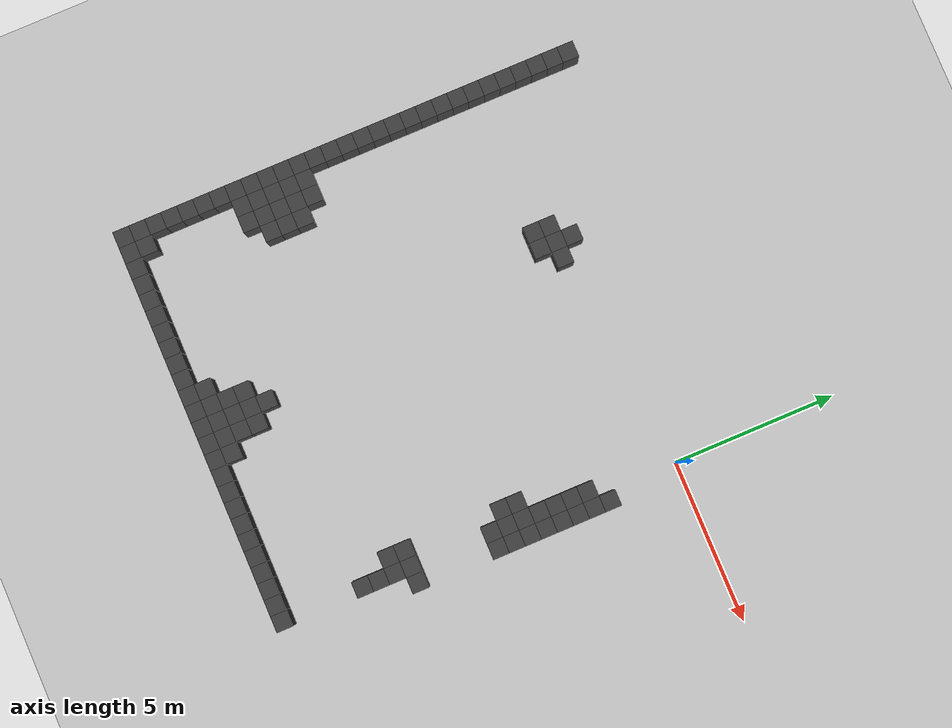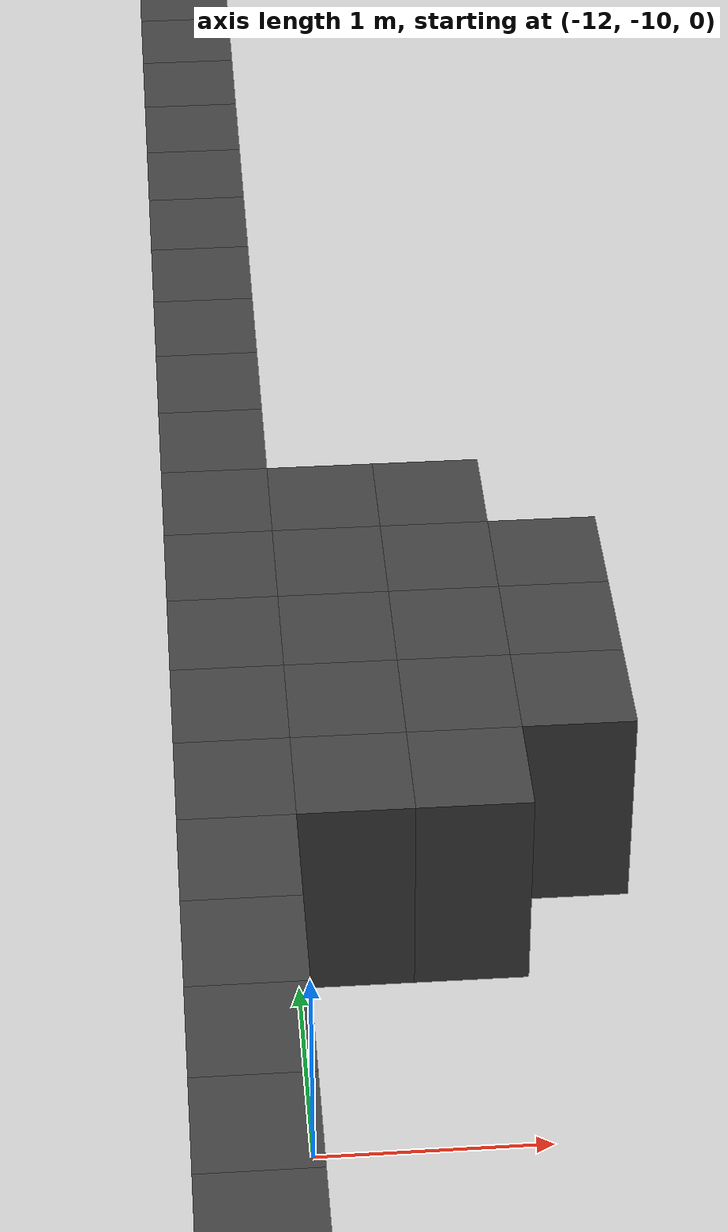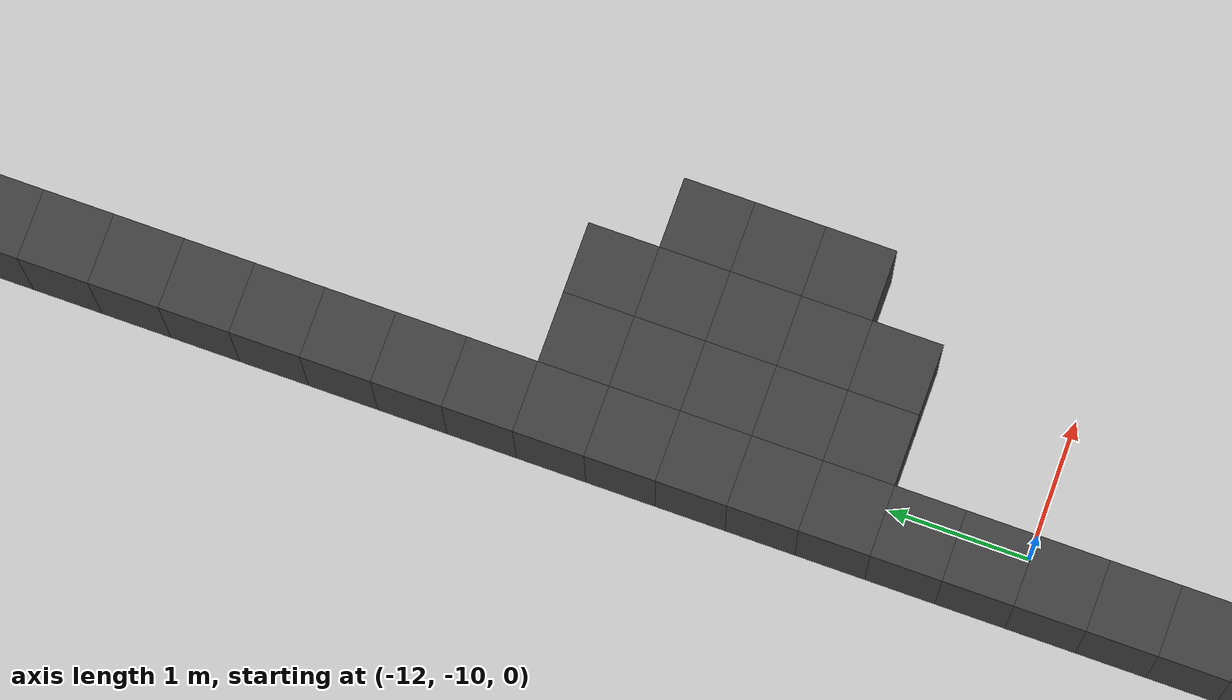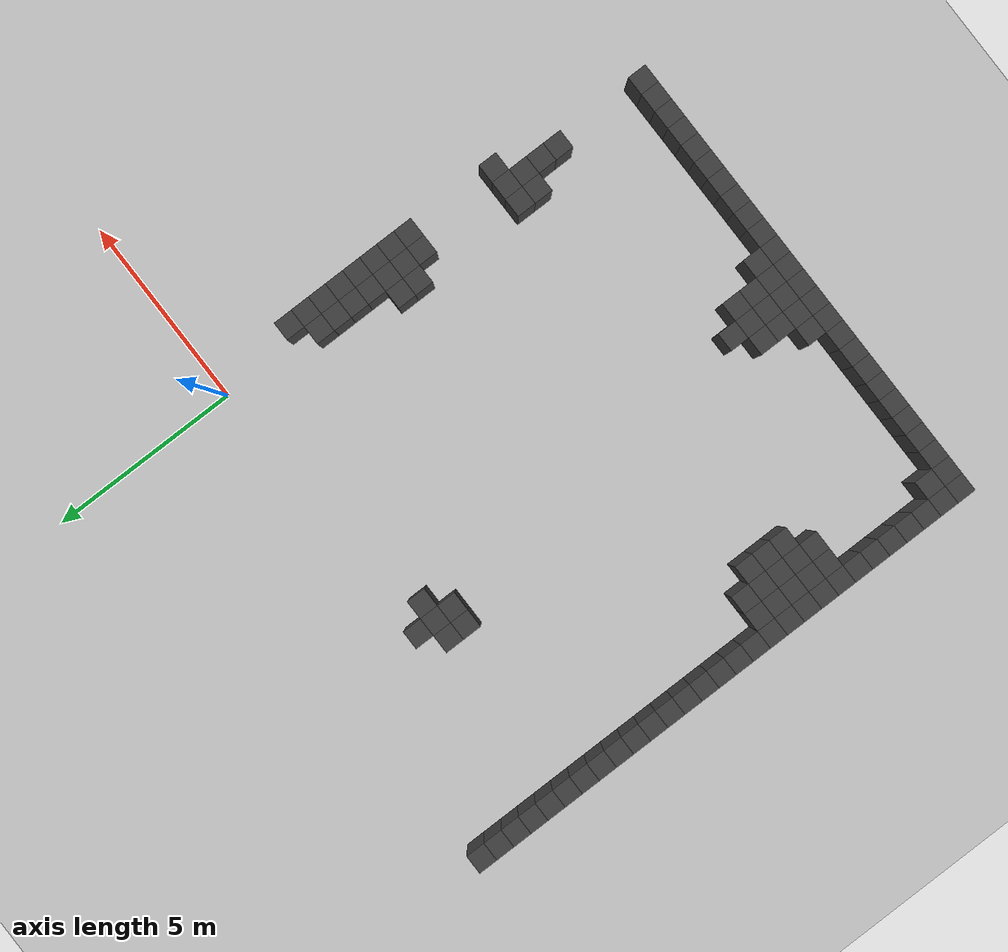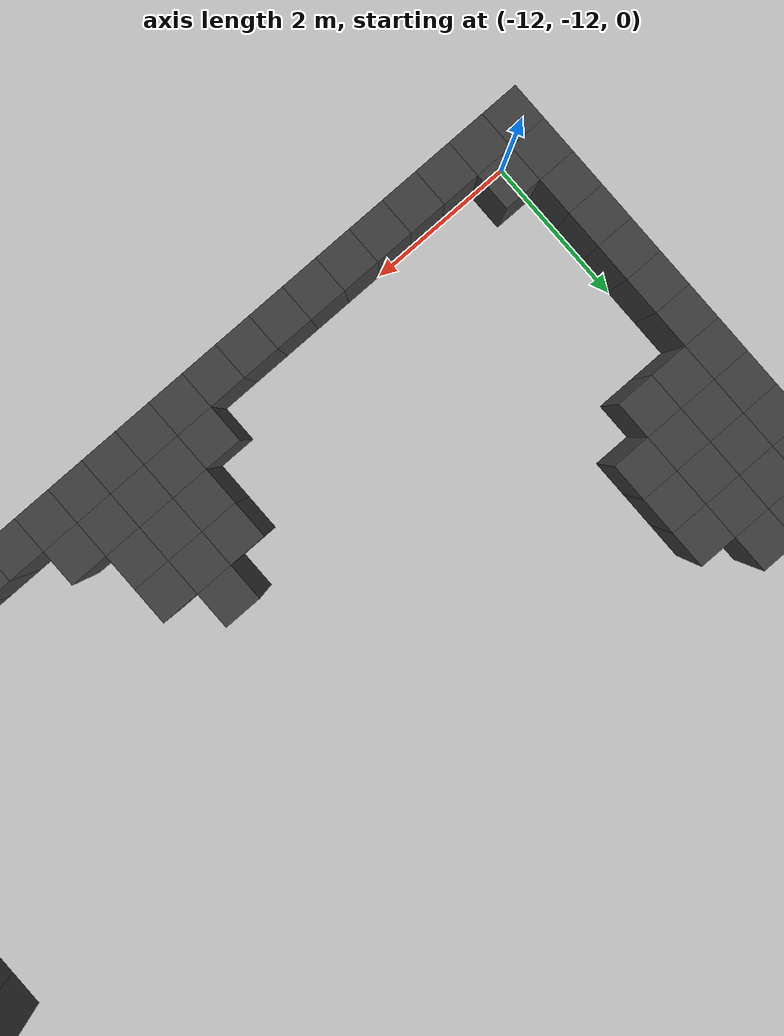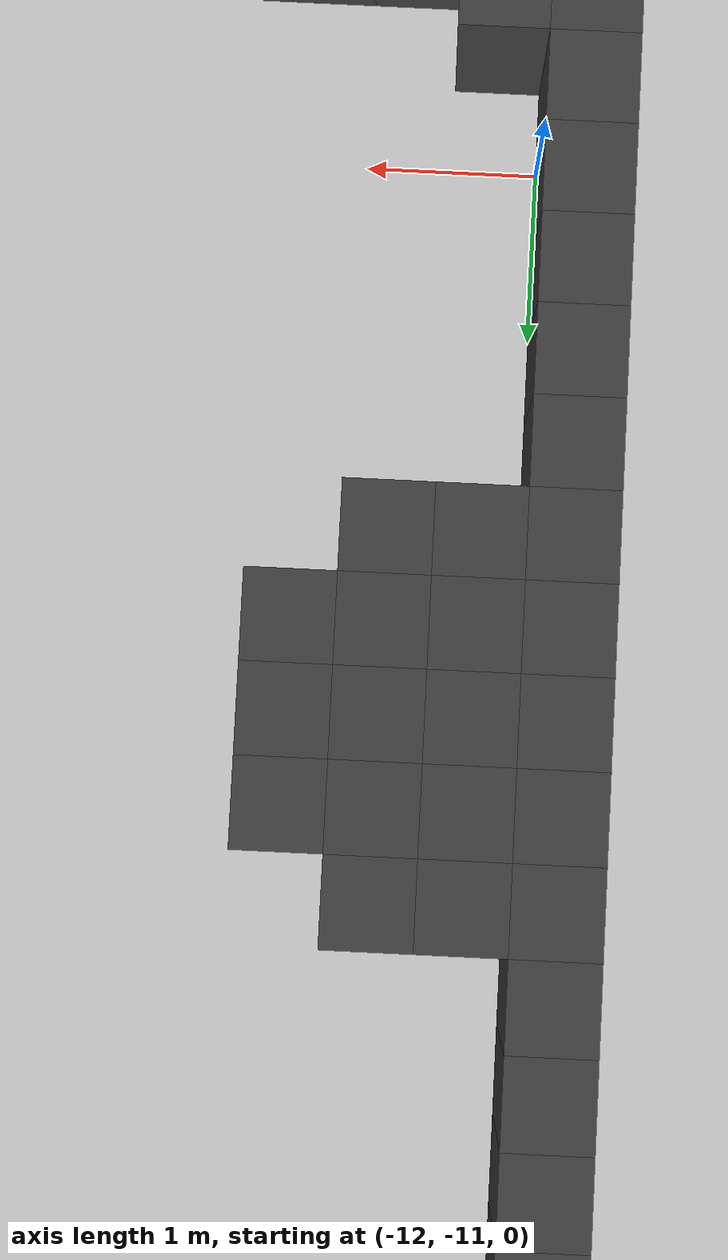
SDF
<sdf version="1.7">
 <world name="map_5937">
  <model name="ground_plane">
   <static>true</static>
   <link name="link">
    <collision name="collision">
     <geometry><plane><normal>0 0 1</normal><size>200 200</size></plane></geometry>
    </collision>
    <visual name="visual">
     <geometry><plane><normal>0 0 1</normal><size>200 200</size></plane></geometry>
     <material><ambient>0.8 0.8 0.8 1</ambient><diffuse>0.8 0.8 0.8 1</diffuse></material>
    </visual>
   </link>
  </model>
  <model name="maze_environment">
   <static>true</static>
   <link name="wall_195">
    <pose>-12.250 1.750 0.500 0 0 0</pose>
    <collision name="col"><geometry><box><size>0.5 0.5 1.0</size></box></geometry></collision>
    <visual name="vis">
     <geometry><box><size>0.5 0.5 1.0</size></box></geometry>
     <material><ambient>0.15 0.15 0.15 1</ambient><diffuse>0.25 0.25 0.25 1</diffuse></material>
    </visual>
   </link>
   <link name="wall_203">
    <pose>-12.250 1.250 0.500 0 0 0</pose>
    <collision name="col"><geometry><box><size>0.5 0.5 1.0</size></box></geometry></collision>
    <visual name="vis">
     <geometry><box><size>0.5 0.5 1.0</size></box></geometry>
     <material><ambient>0.15 0.15 0.15 1</ambient><diffuse>0.25 0.25 0.25 1</diffuse></material>
    </visual>
   </link>
   <link name="wall_211">
    <pose>-12.250 0.750 0.500 0 0 0</pose>
    <collision name="col"><geometry><box><size>0.5 0.5 1.0</size></box></geometry></collision>
    <visual name="vis">
     <geometry><box><size>0.5 0.5 1.0</size></box></geometry>
     <material><ambient>0.15 0.15 0.15 1</ambient><diffuse>0.25 0.25 0.25 1</diffuse></material>
    </visual>
   </link>
   <link name="wall_218">
    <pose>-12.250 0.250 0.500 0 0 0</pose>
    <collision name="col"><geometry><box><size>0.5 0.5 1.0</size></box></geometry></collision>
    <visual name="vis">
     <geometry><box><size>0.5 0.5 1.0</size></box></geometry>
     <material><ambient>0.15 0.15 0.15 1</ambient><diffuse>0.25 0.25 0.25 1</diffuse></material>
    </visual>
   </link>
   <link name="wall_224">
    <pose>-12.250 -0.250 0.500 0 0 0</pose>
    <collision name="col"><geometry><box><size>0.5 0.5 1.0</size></box></geometry></collision>
    <visual name="vis">
     <geometry><box><size>0.5 0.5 1.0</size></box></geometry>
     <material><ambient>0.15 0.15 0.15 1</ambient><diffuse>0.25 0.25 0.25 1</diffuse></material>
    </visual>
   </link>
   <link name="wall_225">
    <pose>-7.250 -0.250 0.500 0 0 0</pose>
    <collision name="col"><geometry><box><size>0.5 0.5 1.0</size></box></geometry></collision>
    <visual name="vis">
     <geometry><box><size>0.5 0.5 1.0</size></box></geometry>
     <material><ambient>0.15 0.15 0.15 1</ambient><diffuse>0.25 0.25 0.25 1</diffuse></material>
    </visual>
   </link>
   <link name="wall_229">
    <pose>-12.250 -0.750 0.500 0 0 0</pose>
    <collision name="col"><geometry><box><size>0.5 0.5 1.0</size></box></geometry></collision>
    <visual name="vis">
     <geometry><box><size>0.5 0.5 1.0</size></box></geometry>
     <material><ambient>0.15 0.15 0.15 1</ambient><diffuse>0.25 0.25 0.25 1</diffuse></material>
    </visual>
   </link>
   <link name="wall_230">
    <pose>-7.750 -0.750 0.500 0 0 0</pose>
    <collision name="col"><geometry><box><size>0.5 0.5 1.0</size></box></geometry></collision>
    <visual name="vis">
     <geometry><box><size>0.5 0.5 1.0</size></box></geometry>
     <material><ambient>0.15 0.15 0.15 1</ambient><diffuse>0.25 0.25 0.25 1</diffuse></material>
    </visual>
   </link>
   <link name="wall_231">
    <pose>-7.250 -0.750 0.500 0 0 0</pose>
    <collision name="col"><geometry><box><size>0.5 0.5 1.0</size></box></geometry></collision>
    <visual name="vis">
     <geometry><box><size>0.5 0.5 1.0</size></box></geometry>
     <material><ambient>0.15 0.15 0.15 1</ambient><diffuse>0.25 0.25 0.25 1</diffuse></material>
    </visual>
   </link>
   <link name="wall_232">
    <pose>-6.750 -0.750 0.500 0 0 0</pose>
    <collision name="col"><geometry><box><size>0.5 0.5 1.0</size></box></geometry></collision>
    <visual name="vis">
     <geometry><box><size>0.5 0.5 1.0</size></box></geometry>
     <material><ambient>0.15 0.15 0.15 1</ambient><diffuse>0.25 0.25 0.25 1</diffuse></material>
    </visual>
   </link>
   <link name="wall_234">
    <pose>-12.250 -1.250 0.500 0 0 0</pose>
    <collision name="col"><geometry><box><size>0.5 0.5 1.0</size></box></geometry></collision>
    <visual name="vis">
     <geometry><box><size>0.5 0.5 1.0</size></box></geometry>
     <material><ambient>0.15 0.15 0.15 1</ambient><diffuse>0.25 0.25 0.25 1</diffuse></material>
    </visual>
   </link>
   <link name="wall_235">
    <pose>-7.750 -1.250 0.500 0 0 0</pose>
    <collision name="col"><geometry><box><size>0.5 0.5 1.0</size></box></geometry></collision>
    <visual name="vis">
     <geometry><box><size>0.5 0.5 1.0</size></box></geometry>
     <material><ambient>0.15 0.15 0.15 1</ambient><diffuse>0.25 0.25 0.25 1</diffuse></material>
    </visual>
   </link>
   <link name="wall_236">
    <pose>-7.250 -1.250 0.500 0 0 0</pose>
    <collision name="col"><geometry><box><size>0.5 0.5 1.0</size></box></geometry></collision>
    <visual name="vis">
     <geometry><box><size>0.5 0.5 1.0</size></box></geometry>
     <material><ambient>0.15 0.15 0.15 1</ambient><diffuse>0.25 0.25 0.25 1</diffuse></material>
    </visual>
   </link>
   <link name="wall_240">
    <pose>-12.250 -1.750 0.500 0 0 0</pose>
    <collision name="col"><geometry><box><size>0.5 0.5 1.0</size></box></geometry></collision>
    <visual name="vis">
     <geometry><box><size>0.5 0.5 1.0</size></box></geometry>
     <material><ambient>0.15 0.15 0.15 1</ambient><diffuse>0.25 0.25 0.25 1</diffuse></material>
    </visual>
   </link>
   <link name="wall_245">
    <pose>-12.250 -2.250 0.500 0 0 0</pose>
    <collision name="col"><geometry><box><size>0.5 0.5 1.0</size></box></geometry></collision>
    <visual name="vis">
     <geometry><box><size>0.5 0.5 1.0</size></box></geometry>
     <material><ambient>0.15 0.15 0.15 1</ambient><diffuse>0.25 0.25 0.25 1</diffuse></material>
    </visual>
   </link>
   <link name="wall_246">
    <pose>0.250 -2.250 0.500 0 0 0</pose>
    <collision name="col"><geometry><box><size>0.5 0.5 1.0</size></box></geometry></collision>
    <visual name="vis">
     <geometry><box><size>0.5 0.5 1.0</size></box></geometry>
     <material><ambient>0.15 0.15 0.15 1</ambient><diffuse>0.25 0.25 0.25 1</diffuse></material>
    </visual>
   </link>
   <link name="wall_252">
    <pose>-12.250 -2.750 0.500 0 0 0</pose>
    <collision name="col"><geometry><box><size>0.5 0.5 1.0</size></box></geometry></collision>
    <visual name="vis">
     <geometry><box><size>0.5 0.5 1.0</size></box></geometry>
     <material><ambient>0.15 0.15 0.15 1</ambient><diffuse>0.25 0.25 0.25 1</diffuse></material>
    </visual>
   </link>
   <link name="wall_253">
    <pose>-0.250 -2.750 0.500 0 0 0</pose>
    <collision name="col"><geometry><box><size>0.5 0.5 1.0</size></box></geometry></collision>
    <visual name="vis">
     <geometry><box><size>0.5 0.5 1.0</size></box></geometry>
     <material><ambient>0.15 0.15 0.15 1</ambient><diffuse>0.25 0.25 0.25 1</diffuse></material>
    </visual>
   </link>
   <link name="wall_254">
    <pose>0.250 -2.750 0.500 0 0 0</pose>
    <collision name="col"><geometry><box><size>0.5 0.5 1.0</size></box></geometry></collision>
    <visual name="vis">
     <geometry><box><size>0.5 0.5 1.0</size></box></geometry>
     <material><ambient>0.15 0.15 0.15 1</ambient><diffuse>0.25 0.25 0.25 1</diffuse></material>
    </visual>
   </link>
   <link name="wall_261">
    <pose>-12.250 -3.250 0.500 0 0 0</pose>
    <collision name="col"><geometry><box><size>0.5 0.5 1.0</size></box></geometry></collision>
    <visual name="vis">
     <geometry><box><size>0.5 0.5 1.0</size></box></geometry>
     <material><ambient>0.15 0.15 0.15 1</ambient><diffuse>0.25 0.25 0.25 1</diffuse></material>
    </visual>
   </link>
   <link name="wall_262">
    <pose>-0.250 -3.250 0.500 0 0 0</pose>
    <collision name="col"><geometry><box><size>0.5 0.5 1.0</size></box></geometry></collision>
    <visual name="vis">
     <geometry><box><size>0.5 0.5 1.0</size></box></geometry>
     <material><ambient>0.15 0.15 0.15 1</ambient><diffuse>0.25 0.25 0.25 1</diffuse></material>
    </visual>
   </link>
   <link name="wall_263">
    <pose>0.250 -3.250 0.500 0 0 0</pose>
    <collision name="col"><geometry><box><size>0.5 0.5 1.0</size></box></geometry></collision>
    <visual name="vis">
     <geometry><box><size>0.5 0.5 1.0</size></box></geometry>
     <material><ambient>0.15 0.15 0.15 1</ambient><diffuse>0.25 0.25 0.25 1</diffuse></material>
    </visual>
   </link>
   <link name="wall_274">
    <pose>-12.250 -3.750 0.500 0 0 0</pose>
    <collision name="col"><geometry><box><size>0.5 0.5 1.0</size></box></geometry></collision>
    <visual name="vis">
     <geometry><box><size>0.5 0.5 1.0</size></box></geometry>
     <material><ambient>0.15 0.15 0.15 1</ambient><diffuse>0.25 0.25 0.25 1</diffuse></material>
    </visual>
   </link>
   <link name="wall_275">
    <pose>-0.250 -3.750 0.500 0 0 0</pose>
    <collision name="col"><geometry><box><size>0.5 0.5 1.0</size></box></geometry></collision>
    <visual name="vis">
     <geometry><box><size>0.5 0.5 1.0</size></box></geometry>
     <material><ambient>0.15 0.15 0.15 1</ambient><diffuse>0.25 0.25 0.25 1</diffuse></material>
    </visual>
   </link>
   <link name="wall_276">
    <pose>0.250 -3.750 0.500 0 0 0</pose>
    <collision name="col"><geometry><box><size>0.5 0.5 1.0</size></box></geometry></collision>
    <visual name="vis">
     <geometry><box><size>0.5 0.5 1.0</size></box></geometry>
     <material><ambient>0.15 0.15 0.15 1</ambient><diffuse>0.25 0.25 0.25 1</diffuse></material>
    </visual>
   </link>
   <link name="wall_287">
    <pose>-12.250 -4.250 0.500 0 0 0</pose>
    <collision name="col"><geometry><box><size>0.5 0.5 1.0</size></box></geometry></collision>
    <visual name="vis">
     <geometry><box><size>0.5 0.5 1.0</size></box></geometry>
     <material><ambient>0.15 0.15 0.15 1</ambient><diffuse>0.25 0.25 0.25 1</diffuse></material>
    </visual>
   </link>
   <link name="wall_288">
    <pose>-0.250 -4.250 0.500 0 0 0</pose>
    <collision name="col"><geometry><box><size>0.5 0.5 1.0</size></box></geometry></collision>
    <visual name="vis">
     <geometry><box><size>0.5 0.5 1.0</size></box></geometry>
     <material><ambient>0.15 0.15 0.15 1</ambient><diffuse>0.25 0.25 0.25 1</diffuse></material>
    </visual>
   </link>
   <link name="wall_289">
    <pose>0.250 -4.250 0.500 0 0 0</pose>
    <collision name="col"><geometry><box><size>0.5 0.5 1.0</size></box></geometry></collision>
    <visual name="vis">
     <geometry><box><size>0.5 0.5 1.0</size></box></geometry>
     <material><ambient>0.15 0.15 0.15 1</ambient><diffuse>0.25 0.25 0.25 1</diffuse></material>
    </visual>
   </link>
   <link name="wall_299">
    <pose>-12.250 -4.750 0.500 0 0 0</pose>
    <collision name="col"><geometry><box><size>0.5 0.5 1.0</size></box></geometry></collision>
    <visual name="vis">
     <geometry><box><size>0.5 0.5 1.0</size></box></geometry>
     <material><ambient>0.15 0.15 0.15 1</ambient><diffuse>0.25 0.25 0.25 1</diffuse></material>
    </visual>
   </link>
   <link name="wall_300">
    <pose>-0.750 -4.750 0.500 0 0 0</pose>
    <collision name="col"><geometry><box><size>0.5 0.5 1.0</size></box></geometry></collision>
    <visual name="vis">
     <geometry><box><size>0.5 0.5 1.0</size></box></geometry>
     <material><ambient>0.15 0.15 0.15 1</ambient><diffuse>0.25 0.25 0.25 1</diffuse></material>
    </visual>
   </link>
   <link name="wall_301">
    <pose>-0.250 -4.750 0.500 0 0 0</pose>
    <collision name="col"><geometry><box><size>0.5 0.5 1.0</size></box></geometry></collision>
    <visual name="vis">
     <geometry><box><size>0.5 0.5 1.0</size></box></geometry>
     <material><ambient>0.15 0.15 0.15 1</ambient><diffuse>0.25 0.25 0.25 1</diffuse></material>
    </visual>
   </link>
   <link name="wall_302">
    <pose>0.250 -4.750 0.500 0 0 0</pose>
    <collision name="col"><geometry><box><size>0.5 0.5 1.0</size></box></geometry></collision>
    <visual name="vis">
     <geometry><box><size>0.5 0.5 1.0</size></box></geometry>
     <material><ambient>0.15 0.15 0.15 1</ambient><diffuse>0.25 0.25 0.25 1</diffuse></material>
    </visual>
   </link>
   <link name="wall_310">
    <pose>-12.250 -5.250 0.500 0 0 0</pose>
    <collision name="col"><geometry><box><size>0.5 0.5 1.0</size></box></geometry></collision>
    <visual name="vis">
     <geometry><box><size>0.5 0.5 1.0</size></box></geometry>
     <material><ambient>0.15 0.15 0.15 1</ambient><diffuse>0.25 0.25 0.25 1</diffuse></material>
    </visual>
   </link>
   <link name="wall_311">
    <pose>-0.750 -5.250 0.500 0 0 0</pose>
    <collision name="col"><geometry><box><size>0.5 0.5 1.0</size></box></geometry></collision>
    <visual name="vis">
     <geometry><box><size>0.5 0.5 1.0</size></box></geometry>
     <material><ambient>0.15 0.15 0.15 1</ambient><diffuse>0.25 0.25 0.25 1</diffuse></material>
    </visual>
   </link>
   <link name="wall_312">
    <pose>-0.250 -5.250 0.500 0 0 0</pose>
    <collision name="col"><geometry><box><size>0.5 0.5 1.0</size></box></geometry></collision>
    <visual name="vis">
     <geometry><box><size>0.5 0.5 1.0</size></box></geometry>
     <material><ambient>0.15 0.15 0.15 1</ambient><diffuse>0.25 0.25 0.25 1</diffuse></material>
    </visual>
   </link>
   <link name="wall_313">
    <pose>0.250 -5.250 0.500 0 0 0</pose>
    <collision name="col"><geometry><box><size>0.5 0.5 1.0</size></box></geometry></collision>
    <visual name="vis">
     <geometry><box><size>0.5 0.5 1.0</size></box></geometry>
     <material><ambient>0.15 0.15 0.15 1</ambient><diffuse>0.25 0.25 0.25 1</diffuse></material>
    </visual>
   </link>
   <link name="wall_318">
    <pose>-12.250 -5.750 0.500 0 0 0</pose>
    <collision name="col"><geometry><box><size>0.5 0.5 1.0</size></box></geometry></collision>
    <visual name="vis">
     <geometry><box><size>0.5 0.5 1.0</size></box></geometry>
     <material><ambient>0.15 0.15 0.15 1</ambient><diffuse>0.25 0.25 0.25 1</diffuse></material>
    </visual>
   </link>
   <link name="wall_319">
    <pose>-0.250 -5.750 0.500 0 0 0</pose>
    <collision name="col"><geometry><box><size>0.5 0.5 1.0</size></box></geometry></collision>
    <visual name="vis">
     <geometry><box><size>0.5 0.5 1.0</size></box></geometry>
     <material><ambient>0.15 0.15 0.15 1</ambient><diffuse>0.25 0.25 0.25 1</diffuse></material>
    </visual>
   </link>
   <link name="wall_320">
    <pose>0.250 -5.750 0.500 0 0 0</pose>
    <collision name="col"><geometry><box><size>0.5 0.5 1.0</size></box></geometry></collision>
    <visual name="vis">
     <geometry><box><size>0.5 0.5 1.0</size></box></geometry>
     <material><ambient>0.15 0.15 0.15 1</ambient><diffuse>0.25 0.25 0.25 1</diffuse></material>
    </visual>
   </link>
   <link name="wall_325">
    <pose>-12.250 -6.250 0.500 0 0 0</pose>
    <collision name="col"><geometry><box><size>0.5 0.5 1.0</size></box></geometry></collision>
    <visual name="vis">
     <geometry><box><size>0.5 0.5 1.0</size></box></geometry>
     <material><ambient>0.15 0.15 0.15 1</ambient><diffuse>0.25 0.25 0.25 1</diffuse></material>
    </visual>
   </link>
   <link name="wall_335">
    <pose>-12.250 -6.750 0.500 0 0 0</pose>
    <collision name="col"><geometry><box><size>0.5 0.5 1.0</size></box></geometry></collision>
    <visual name="vis">
     <geometry><box><size>0.5 0.5 1.0</size></box></geometry>
     <material><ambient>0.15 0.15 0.15 1</ambient><diffuse>0.25 0.25 0.25 1</diffuse></material>
    </visual>
   </link>
   <link name="wall_336">
    <pose>-11.750 -6.750 0.500 0 0 0</pose>
    <collision name="col"><geometry><box><size>0.5 0.5 1.0</size></box></geometry></collision>
    <visual name="vis">
     <geometry><box><size>0.5 0.5 1.0</size></box></geometry>
     <material><ambient>0.15 0.15 0.15 1</ambient><diffuse>0.25 0.25 0.25 1</diffuse></material>
    </visual>
   </link>
   <link name="wall_337">
    <pose>-11.250 -6.750 0.500 0 0 0</pose>
    <collision name="col"><geometry><box><size>0.5 0.5 1.0</size></box></geometry></collision>
    <visual name="vis">
     <geometry><box><size>0.5 0.5 1.0</size></box></geometry>
     <material><ambient>0.15 0.15 0.15 1</ambient><diffuse>0.25 0.25 0.25 1</diffuse></material>
    </visual>
   </link>
   <link name="wall_349">
    <pose>-12.250 -7.250 0.500 0 0 0</pose>
    <collision name="col"><geometry><box><size>0.5 0.5 1.0</size></box></geometry></collision>
    <visual name="vis">
     <geometry><box><size>0.5 0.5 1.0</size></box></geometry>
     <material><ambient>0.15 0.15 0.15 1</ambient><diffuse>0.25 0.25 0.25 1</diffuse></material>
    </visual>
   </link>
   <link name="wall_350">
    <pose>-11.750 -7.250 0.500 0 0 0</pose>
    <collision name="col"><geometry><box><size>0.5 0.5 1.0</size></box></geometry></collision>
    <visual name="vis">
     <geometry><box><size>0.5 0.5 1.0</size></box></geometry>
     <material><ambient>0.15 0.15 0.15 1</ambient><diffuse>0.25 0.25 0.25 1</diffuse></material>
    </visual>
   </link>
   <link name="wall_351">
    <pose>-11.250 -7.250 0.500 0 0 0</pose>
    <collision name="col"><geometry><box><size>0.5 0.5 1.0</size></box></geometry></collision>
    <visual name="vis">
     <geometry><box><size>0.5 0.5 1.0</size></box></geometry>
     <material><ambient>0.15 0.15 0.15 1</ambient><diffuse>0.25 0.25 0.25 1</diffuse></material>
    </visual>
   </link>
   <link name="wall_352">
    <pose>-10.750 -7.250 0.500 0 0 0</pose>
    <collision name="col"><geometry><box><size>0.5 0.5 1.0</size></box></geometry></collision>
    <visual name="vis">
     <geometry><box><size>0.5 0.5 1.0</size></box></geometry>
     <material><ambient>0.15 0.15 0.15 1</ambient><diffuse>0.25 0.25 0.25 1</diffuse></material>
    </visual>
   </link>
   <link name="wall_364">
    <pose>-12.250 -7.750 0.500 0 0 0</pose>
    <collision name="col"><geometry><box><size>0.5 0.5 1.0</size></box></geometry></collision>
    <visual name="vis">
     <geometry><box><size>0.5 0.5 1.0</size></box></geometry>
     <material><ambient>0.15 0.15 0.15 1</ambient><diffuse>0.25 0.25 0.25 1</diffuse></material>
    </visual>
   </link>
   <link name="wall_365">
    <pose>-11.750 -7.750 0.500 0 0 0</pose>
    <collision name="col"><geometry><box><size>0.5 0.5 1.0</size></box></geometry></collision>
    <visual name="vis">
     <geometry><box><size>0.5 0.5 1.0</size></box></geometry>
     <material><ambient>0.15 0.15 0.15 1</ambient><diffuse>0.25 0.25 0.25 1</diffuse></material>
    </visual>
   </link>
   <link name="wall_366">
    <pose>-11.250 -7.750 0.500 0 0 0</pose>
    <collision name="col"><geometry><box><size>0.5 0.5 1.0</size></box></geometry></collision>
    <visual name="vis">
     <geometry><box><size>0.5 0.5 1.0</size></box></geometry>
     <material><ambient>0.15 0.15 0.15 1</ambient><diffuse>0.25 0.25 0.25 1</diffuse></material>
    </visual>
   </link>
   <link name="wall_367">
    <pose>-10.750 -7.750 0.500 0 0 0</pose>
    <collision name="col"><geometry><box><size>0.5 0.5 1.0</size></box></geometry></collision>
    <visual name="vis">
     <geometry><box><size>0.5 0.5 1.0</size></box></geometry>
     <material><ambient>0.15 0.15 0.15 1</ambient><diffuse>0.25 0.25 0.25 1</diffuse></material>
    </visual>
   </link>
   <link name="wall_381">
    <pose>-12.250 -8.250 0.500 0 0 0</pose>
    <collision name="col"><geometry><box><size>0.5 0.5 1.0</size></box></geometry></collision>
    <visual name="vis">
     <geometry><box><size>0.5 0.5 1.0</size></box></geometry>
     <material><ambient>0.15 0.15 0.15 1</ambient><diffuse>0.25 0.25 0.25 1</diffuse></material>
    </visual>
   </link>
   <link name="wall_382">
    <pose>-11.750 -8.250 0.500 0 0 0</pose>
    <collision name="col"><geometry><box><size>0.5 0.5 1.0</size></box></geometry></collision>
    <visual name="vis">
     <geometry><box><size>0.5 0.5 1.0</size></box></geometry>
     <material><ambient>0.15 0.15 0.15 1</ambient><diffuse>0.25 0.25 0.25 1</diffuse></material>
    </visual>
   </link>
   <link name="wall_383">
    <pose>-11.250 -8.250 0.500 0 0 0</pose>
    <collision name="col"><geometry><box><size>0.5 0.5 1.0</size></box></geometry></collision>
    <visual name="vis">
     <geometry><box><size>0.5 0.5 1.0</size></box></geometry>
     <material><ambient>0.15 0.15 0.15 1</ambient><diffuse>0.25 0.25 0.25 1</diffuse></material>
    </visual>
   </link>
   <link name="wall_384">
    <pose>-10.750 -8.250 0.500 0 0 0</pose>
    <collision name="col"><geometry><box><size>0.5 0.5 1.0</size></box></geometry></collision>
    <visual name="vis">
     <geometry><box><size>0.5 0.5 1.0</size></box></geometry>
     <material><ambient>0.15 0.15 0.15 1</ambient><diffuse>0.25 0.25 0.25 1</diffuse></material>
    </visual>
   </link>
   <link name="wall_385">
    <pose>-0.750 -8.250 0.500 0 0 0</pose>
    <collision name="col"><geometry><box><size>0.5 0.5 1.0</size></box></geometry></collision>
    <visual name="vis">
     <geometry><box><size>0.5 0.5 1.0</size></box></geometry>
     <material><ambient>0.15 0.15 0.15 1</ambient><diffuse>0.25 0.25 0.25 1</diffuse></material>
    </visual>
   </link>
   <link name="wall_386">
    <pose>-0.250 -8.250 0.500 0 0 0</pose>
    <collision name="col"><geometry><box><size>0.5 0.5 1.0</size></box></geometry></collision>
    <visual name="vis">
     <geometry><box><size>0.5 0.5 1.0</size></box></geometry>
     <material><ambient>0.15 0.15 0.15 1</ambient><diffuse>0.25 0.25 0.25 1</diffuse></material>
    </visual>
   </link>
   <link name="wall_387">
    <pose>0.250 -8.250 0.500 0 0 0</pose>
    <collision name="col"><geometry><box><size>0.5 0.5 1.0</size></box></geometry></collision>
    <visual name="vis">
     <geometry><box><size>0.5 0.5 1.0</size></box></geometry>
     <material><ambient>0.15 0.15 0.15 1</ambient><diffuse>0.25 0.25 0.25 1</diffuse></material>
    </visual>
   </link>
   <link name="wall_398">
    <pose>-12.250 -8.750 0.500 0 0 0</pose>
    <collision name="col"><geometry><box><size>0.5 0.5 1.0</size></box></geometry></collision>
    <visual name="vis">
     <geometry><box><size>0.5 0.5 1.0</size></box></geometry>
     <material><ambient>0.15 0.15 0.15 1</ambient><diffuse>0.25 0.25 0.25 1</diffuse></material>
    </visual>
   </link>
   <link name="wall_399">
    <pose>-11.750 -8.750 0.500 0 0 0</pose>
    <collision name="col"><geometry><box><size>0.5 0.5 1.0</size></box></geometry></collision>
    <visual name="vis">
     <geometry><box><size>0.5 0.5 1.0</size></box></geometry>
     <material><ambient>0.15 0.15 0.15 1</ambient><diffuse>0.25 0.25 0.25 1</diffuse></material>
    </visual>
   </link>
   <link name="wall_400">
    <pose>-11.250 -8.750 0.500 0 0 0</pose>
    <collision name="col"><geometry><box><size>0.5 0.5 1.0</size></box></geometry></collision>
    <visual name="vis">
     <geometry><box><size>0.5 0.5 1.0</size></box></geometry>
     <material><ambient>0.15 0.15 0.15 1</ambient><diffuse>0.25 0.25 0.25 1</diffuse></material>
    </visual>
   </link>
   <link name="wall_401">
    <pose>-0.750 -8.750 0.500 0 0 0</pose>
    <collision name="col"><geometry><box><size>0.5 0.5 1.0</size></box></geometry></collision>
    <visual name="vis">
     <geometry><box><size>0.5 0.5 1.0</size></box></geometry>
     <material><ambient>0.15 0.15 0.15 1</ambient><diffuse>0.25 0.25 0.25 1</diffuse></material>
    </visual>
   </link>
   <link name="wall_402">
    <pose>-0.250 -8.750 0.500 0 0 0</pose>
    <collision name="col"><geometry><box><size>0.5 0.5 1.0</size></box></geometry></collision>
    <visual name="vis">
     <geometry><box><size>0.5 0.5 1.0</size></box></geometry>
     <material><ambient>0.15 0.15 0.15 1</ambient><diffuse>0.25 0.25 0.25 1</diffuse></material>
    </visual>
   </link>
   <link name="wall_418">
    <pose>-12.250 -9.250 0.500 0 0 0</pose>
    <collision name="col"><geometry><box><size>0.5 0.5 1.0</size></box></geometry></collision>
    <visual name="vis">
     <geometry><box><size>0.5 0.5 1.0</size></box></geometry>
     <material><ambient>0.15 0.15 0.15 1</ambient><diffuse>0.25 0.25 0.25 1</diffuse></material>
    </visual>
   </link>
   <link name="wall_419">
    <pose>-0.250 -9.250 0.500 0 0 0</pose>
    <collision name="col"><geometry><box><size>0.5 0.5 1.0</size></box></geometry></collision>
    <visual name="vis">
     <geometry><box><size>0.5 0.5 1.0</size></box></geometry>
     <material><ambient>0.15 0.15 0.15 1</ambient><diffuse>0.25 0.25 0.25 1</diffuse></material>
    </visual>
   </link>
   <link name="wall_438">
    <pose>-12.250 -9.750 0.500 0 0 0</pose>
    <collision name="col"><geometry><box><size>0.5 0.5 1.0</size></box></geometry></collision>
    <visual name="vis">
     <geometry><box><size>0.5 0.5 1.0</size></box></geometry>
     <material><ambient>0.15 0.15 0.15 1</ambient><diffuse>0.25 0.25 0.25 1</diffuse></material>
    </visual>
   </link>
   <link name="wall_439">
    <pose>-0.250 -9.750 0.500 0 0 0</pose>
    <collision name="col"><geometry><box><size>0.5 0.5 1.0</size></box></geometry></collision>
    <visual name="vis">
     <geometry><box><size>0.5 0.5 1.0</size></box></geometry>
     <material><ambient>0.15 0.15 0.15 1</ambient><diffuse>0.25 0.25 0.25 1</diffuse></material>
    </visual>
   </link>
   <link name="wall_455">
    <pose>-12.250 -10.250 0.500 0 0 0</pose>
    <collision name="col"><geometry><box><size>0.5 0.5 1.0</size></box></geometry></collision>
    <visual name="vis">
     <geometry><box><size>0.5 0.5 1.0</size></box></geometry>
     <material><ambient>0.15 0.15 0.15 1</ambient><diffuse>0.25 0.25 0.25 1</diffuse></material>
    </visual>
   </link>
   <link name="wall_456">
    <pose>-6.250 -10.250 0.500 0 0 0</pose>
    <collision name="col"><geometry><box><size>0.5 0.5 1.0</size></box></geometry></collision>
    <visual name="vis">
     <geometry><box><size>0.5 0.5 1.0</size></box></geometry>
     <material><ambient>0.15 0.15 0.15 1</ambient><diffuse>0.25 0.25 0.25 1</diffuse></material>
    </visual>
   </link>
   <link name="wall_466">
    <pose>-12.250 -10.750 0.500 0 0 0</pose>
    <collision name="col"><geometry><box><size>0.5 0.5 1.0</size></box></geometry></collision>
    <visual name="vis">
     <geometry><box><size>0.5 0.5 1.0</size></box></geometry>
     <material><ambient>0.15 0.15 0.15 1</ambient><diffuse>0.25 0.25 0.25 1</diffuse></material>
    </visual>
   </link>
   <link name="wall_467">
    <pose>-6.750 -10.750 0.500 0 0 0</pose>
    <collision name="col"><geometry><box><size>0.5 0.5 1.0</size></box></geometry></collision>
    <visual name="vis">
     <geometry><box><size>0.5 0.5 1.0</size></box></geometry>
     <material><ambient>0.15 0.15 0.15 1</ambient><diffuse>0.25 0.25 0.25 1</diffuse></material>
    </visual>
   </link>
   <link name="wall_468">
    <pose>-6.250 -10.750 0.500 0 0 0</pose>
    <collision name="col"><geometry><box><size>0.5 0.5 1.0</size></box></geometry></collision>
    <visual name="vis">
     <geometry><box><size>0.5 0.5 1.0</size></box></geometry>
     <material><ambient>0.15 0.15 0.15 1</ambient><diffuse>0.25 0.25 0.25 1</diffuse></material>
    </visual>
   </link>
   <link name="wall_469">
    <pose>-5.750 -10.750 0.500 0 0 0</pose>
    <collision name="col"><geometry><box><size>0.5 0.5 1.0</size></box></geometry></collision>
    <visual name="vis">
     <geometry><box><size>0.5 0.5 1.0</size></box></geometry>
     <material><ambient>0.15 0.15 0.15 1</ambient><diffuse>0.25 0.25 0.25 1</diffuse></material>
    </visual>
   </link>
   <link name="wall_475">
    <pose>-12.250 -11.250 0.500 0 0 0</pose>
    <collision name="col"><geometry><box><size>0.5 0.5 1.0</size></box></geometry></collision>
    <visual name="vis">
     <geometry><box><size>0.5 0.5 1.0</size></box></geometry>
     <material><ambient>0.15 0.15 0.15 1</ambient><diffuse>0.25 0.25 0.25 1</diffuse></material>
    </visual>
   </link>
   <link name="wall_476">
    <pose>-6.750 -11.250 0.500 0 0 0</pose>
    <collision name="col"><geometry><box><size>0.5 0.5 1.0</size></box></geometry></collision>
    <visual name="vis">
     <geometry><box><size>0.5 0.5 1.0</size></box></geometry>
     <material><ambient>0.15 0.15 0.15 1</ambient><diffuse>0.25 0.25 0.25 1</diffuse></material>
    </visual>
   </link>
   <link name="wall_477">
    <pose>-6.250 -11.250 0.500 0 0 0</pose>
    <collision name="col"><geometry><box><size>0.5 0.5 1.0</size></box></geometry></collision>
    <visual name="vis">
     <geometry><box><size>0.5 0.5 1.0</size></box></geometry>
     <material><ambient>0.15 0.15 0.15 1</ambient><diffuse>0.25 0.25 0.25 1</diffuse></material>
    </visual>
   </link>
   <link name="wall_478">
    <pose>-5.750 -11.250 0.500 0 0 0</pose>
    <collision name="col"><geometry><box><size>0.5 0.5 1.0</size></box></geometry></collision>
    <visual name="vis">
     <geometry><box><size>0.5 0.5 1.0</size></box></geometry>
     <material><ambient>0.15 0.15 0.15 1</ambient><diffuse>0.25 0.25 0.25 1</diffuse></material>
    </visual>
   </link>
   <link name="wall_481">
    <pose>-12.250 -11.750 0.500 0 0 0</pose>
    <collision name="col"><geometry><box><size>0.5 0.5 1.0</size></box></geometry></collision>
    <visual name="vis">
     <geometry><box><size>0.5 0.5 1.0</size></box></geometry>
     <material><ambient>0.15 0.15 0.15 1</ambient><diffuse>0.25 0.25 0.25 1</diffuse></material>
    </visual>
   </link>
   <link name="wall_482">
    <pose>-11.750 -11.750 0.500 0 0 0</pose>
    <collision name="col"><geometry><box><size>0.5 0.5 1.0</size></box></geometry></collision>
    <visual name="vis">
     <geometry><box><size>0.5 0.5 1.0</size></box></geometry>
     <material><ambient>0.15 0.15 0.15 1</ambient><diffuse>0.25 0.25 0.25 1</diffuse></material>
    </visual>
   </link>
   <link name="wall_483">
    <pose>-7.250 -11.750 0.500 0 0 0</pose>
    <collision name="col"><geometry><box><size>0.5 0.5 1.0</size></box></geometry></collision>
    <visual name="vis">
     <geometry><box><size>0.5 0.5 1.0</size></box></geometry>
     <material><ambient>0.15 0.15 0.15 1</ambient><diffuse>0.25 0.25 0.25 1</diffuse></material>
    </visual>
   </link>
   <link name="wall_484">
    <pose>-6.750 -11.750 0.500 0 0 0</pose>
    <collision name="col"><geometry><box><size>0.5 0.5 1.0</size></box></geometry></collision>
    <visual name="vis">
     <geometry><box><size>0.5 0.5 1.0</size></box></geometry>
     <material><ambient>0.15 0.15 0.15 1</ambient><diffuse>0.25 0.25 0.25 1</diffuse></material>
    </visual>
   </link>
   <link name="wall_485">
    <pose>-6.250 -11.750 0.500 0 0 0</pose>
    <collision name="col"><geometry><box><size>0.5 0.5 1.0</size></box></geometry></collision>
    <visual name="vis">
     <geometry><box><size>0.5 0.5 1.0</size></box></geometry>
     <material><ambient>0.15 0.15 0.15 1</ambient><diffuse>0.25 0.25 0.25 1</diffuse></material>
    </visual>
   </link>
   <link name="wall_486">
    <pose>-5.750 -11.750 0.500 0 0 0</pose>
    <collision name="col"><geometry><box><size>0.5 0.5 1.0</size></box></geometry></collision>
    <visual name="vis">
     <geometry><box><size>0.5 0.5 1.0</size></box></geometry>
     <material><ambient>0.15 0.15 0.15 1</ambient><diffuse>0.25 0.25 0.25 1</diffuse></material>
    </visual>
   </link>
   <link name="wall_487">
    <pose>-5.250 -11.750 0.500 0 0 0</pose>
    <collision name="col"><geometry><box><size>0.5 0.5 1.0</size></box></geometry></collision>
    <visual name="vis">
     <geometry><box><size>0.5 0.5 1.0</size></box></geometry>
     <material><ambient>0.15 0.15 0.15 1</ambient><diffuse>0.25 0.25 0.25 1</diffuse></material>
    </visual>
   </link>
   <link name="wall_493">
    <pose>-12.250 -12.250 0.500 0 0 0</pose>
    <collision name="col"><geometry><box><size>0.5 0.5 1.0</size></box></geometry></collision>
    <visual name="vis">
     <geometry><box><size>0.5 0.5 1.0</size></box></geometry>
     <material><ambient>0.15 0.15 0.15 1</ambient><diffuse>0.25 0.25 0.25 1</diffuse></material>
    </visual>
   </link>
   <link name="wall_494">
    <pose>-11.750 -12.250 0.500 0 0 0</pose>
    <collision name="col"><geometry><box><size>0.5 0.5 1.0</size></box></geometry></collision>
    <visual name="vis">
     <geometry><box><size>0.5 0.5 1.0</size></box></geometry>
     <material><ambient>0.15 0.15 0.15 1</ambient><diffuse>0.25 0.25 0.25 1</diffuse></material>
    </visual>
   </link>
   <link name="wall_495">
    <pose>-11.250 -12.250 0.500 0 0 0</pose>
    <collision name="col"><geometry><box><size>0.5 0.5 1.0</size></box></geometry></collision>
    <visual name="vis">
     <geometry><box><size>0.5 0.5 1.0</size></box></geometry>
     <material><ambient>0.15 0.15 0.15 1</ambient><diffuse>0.25 0.25 0.25 1</diffuse></material>
    </visual>
   </link>
   <link name="wall_496">
    <pose>-10.750 -12.250 0.500 0 0 0</pose>
    <collision name="col"><geometry><box><size>0.5 0.5 1.0</size></box></geometry></collision>
    <visual name="vis">
     <geometry><box><size>0.5 0.5 1.0</size></box></geometry>
     <material><ambient>0.15 0.15 0.15 1</ambient><diffuse>0.25 0.25 0.25 1</diffuse></material>
    </visual>
   </link>
   <link name="wall_497">
    <pose>-10.250 -12.250 0.500 0 0 0</pose>
    <collision name="col"><geometry><box><size>0.5 0.5 1.0</size></box></geometry></collision>
    <visual name="vis">
     <geometry><box><size>0.5 0.5 1.0</size></box></geometry>
     <material><ambient>0.15 0.15 0.15 1</ambient><diffuse>0.25 0.25 0.25 1</diffuse></material>
    </visual>
   </link>
   <link name="wall_498">
    <pose>-9.750 -12.250 0.500 0 0 0</pose>
    <collision name="col"><geometry><box><size>0.5 0.5 1.0</size></box></geometry></collision>
    <visual name="vis">
     <geometry><box><size>0.5 0.5 1.0</size></box></geometry>
     <material><ambient>0.15 0.15 0.15 1</ambient><diffuse>0.25 0.25 0.25 1</diffuse></material>
    </visual>
   </link>
   <link name="wall_499">
    <pose>-9.250 -12.250 0.500 0 0 0</pose>
    <collision name="col"><geometry><box><size>0.5 0.5 1.0</size></box></geometry></collision>
    <visual name="vis">
     <geometry><box><size>0.5 0.5 1.0</size></box></geometry>
     <material><ambient>0.15 0.15 0.15 1</ambient><diffuse>0.25 0.25 0.25 1</diffuse></material>
    </visual>
   </link>
   <link name="wall_500">
    <pose>-8.750 -12.250 0.500 0 0 0</pose>
    <collision name="col"><geometry><box><size>0.5 0.5 1.0</size></box></geometry></collision>
    <visual name="vis">
     <geometry><box><size>0.5 0.5 1.0</size></box></geometry>
     <material><ambient>0.15 0.15 0.15 1</ambient><diffuse>0.25 0.25 0.25 1</diffuse></material>
    </visual>
   </link>
   <link name="wall_501">
    <pose>-8.250 -12.250 0.500 0 0 0</pose>
    <collision name="col"><geometry><box><size>0.5 0.5 1.0</size></box></geometry></collision>
    <visual name="vis">
     <geometry><box><size>0.5 0.5 1.0</size></box></geometry>
     <material><ambient>0.15 0.15 0.15 1</ambient><diffuse>0.25 0.25 0.25 1</diffuse></material>
    </visual>
   </link>
   <link name="wall_502">
    <pose>-7.750 -12.250 0.500 0 0 0</pose>
    <collision name="col"><geometry><box><size>0.5 0.5 1.0</size></box></geometry></collision>
    <visual name="vis">
     <geometry><box><size>0.5 0.5 1.0</size></box></geometry>
     <material><ambient>0.15 0.15 0.15 1</ambient><diffuse>0.25 0.25 0.25 1</diffuse></material>
    </visual>
   </link>
   <link name="wall_503">
    <pose>-7.250 -12.250 0.500 0 0 0</pose>
    <collision name="col"><geometry><box><size>0.5 0.5 1.0</size></box></geometry></collision>
    <visual name="vis">
     <geometry><box><size>0.5 0.5 1.0</size></box></geometry>
     <material><ambient>0.15 0.15 0.15 1</ambient><diffuse>0.25 0.25 0.25 1</diffuse></material>
    </visual>
   </link>
   <link name="wall_504">
    <pose>-6.750 -12.250 0.500 0 0 0</pose>
    <collision name="col"><geometry><box><size>0.5 0.5 1.0</size></box></geometry></collision>
    <visual name="vis">
     <geometry><box><size>0.5 0.5 1.0</size></box></geometry>
     <material><ambient>0.15 0.15 0.15 1</ambient><diffuse>0.25 0.25 0.25 1</diffuse></material>
    </visual>
   </link>
   <link name="wall_505">
    <pose>-6.250 -12.250 0.500 0 0 0</pose>
    <collision name="col"><geometry><box><size>0.5 0.5 1.0</size></box></geometry></collision>
    <visual name="vis">
     <geometry><box><size>0.5 0.5 1.0</size></box></geometry>
     <material><ambient>0.15 0.15 0.15 1</ambient><diffuse>0.25 0.25 0.25 1</diffuse></material>
    </visual>
   </link>
   <link name="wall_506">
    <pose>-5.750 -12.250 0.500 0 0 0</pose>
    <collision name="col"><geometry><box><size>0.5 0.5 1.0</size></box></geometry></collision>
    <visual name="vis">
     <geometry><box><size>0.5 0.5 1.0</size></box></geometry>
     <material><ambient>0.15 0.15 0.15 1</ambient><diffuse>0.25 0.25 0.25 1</diffuse></material>
    </visual>
   </link>
   <link name="wall_507">
    <pose>-5.250 -12.250 0.500 0 0 0</pose>
    <collision name="col"><geometry><box><size>0.5 0.5 1.0</size></box></geometry></collision>
    <visual name="vis">
     <geometry><box><size>0.5 0.5 1.0</size></box></geometry>
     <material><ambient>0.15 0.15 0.15 1</ambient><diffuse>0.25 0.25 0.25 1</diffuse></material>
    </visual>
   </link>
   <link name="wall_508">
    <pose>-4.750 -12.250 0.500 0 0 0</pose>
    <collision name="col"><geometry><box><size>0.5 0.5 1.0</size></box></geometry></collision>
    <visual name="vis">
     <geometry><box><size>0.5 0.5 1.0</size></box></geometry>
     <material><ambient>0.15 0.15 0.15 1</ambient><diffuse>0.25 0.25 0.25 1</diffuse></material>
    </visual>
   </link>
   <link name="wall_509">
    <pose>-4.250 -12.250 0.500 0 0 0</pose>
    <collision name="col"><geometry><box><size>0.5 0.5 1.0</size></box></geometry></collision>
    <visual name="vis">
     <geometry><box><size>0.5 0.5 1.0</size></box></geometry>
     <material><ambient>0.15 0.15 0.15 1</ambient><diffuse>0.25 0.25 0.25 1</diffuse></material>
    </visual>
   </link>
   <link name="wall_510">
    <pose>-3.750 -12.250 0.500 0 0 0</pose>
    <collision name="col"><geometry><box><size>0.5 0.5 1.0</size></box></geometry></collision>
    <visual name="vis">
     <geometry><box><size>0.5 0.5 1.0</size></box></geometry>
     <material><ambient>0.15 0.15 0.15 1</ambient><diffuse>0.25 0.25 0.25 1</diffuse></material>
    </visual>
   </link>
   <link name="wall_511">
    <pose>-3.250 -12.250 0.500 0 0 0</pose>
    <collision name="col"><geometry><box><size>0.5 0.5 1.0</size></box></geometry></collision>
    <visual name="vis">
     <geometry><box><size>0.5 0.5 1.0</size></box></geometry>
     <material><ambient>0.15 0.15 0.15 1</ambient><diffuse>0.25 0.25 0.25 1</diffuse></material>
    </visual>
   </link>
   <link name="wall_512">
    <pose>-2.750 -12.250 0.500 0 0 0</pose>
    <collision name="col"><geometry><box><size>0.5 0.5 1.0</size></box></geometry></collision>
    <visual name="vis">
     <geometry><box><size>0.5 0.5 1.0</size></box></geometry>
     <material><ambient>0.15 0.15 0.15 1</ambient><diffuse>0.25 0.25 0.25 1</diffuse></material>
    </visual>
   </link>
   <link name="wall_513">
    <pose>-2.250 -12.250 0.500 0 0 0</pose>
    <collision name="col"><geometry><box><size>0.5 0.5 1.0</size></box></geometry></collision>
    <visual name="vis">
     <geometry><box><size>0.5 0.5 1.0</size></box></geometry>
     <material><ambient>0.15 0.15 0.15 1</ambient><diffuse>0.25 0.25 0.25 1</diffuse></material>
    </visual>
   </link>
   <link name="wall_514">
    <pose>-1.750 -12.250 0.500 0 0 0</pose>
    <collision name="col"><geometry><box><size>0.5 0.5 1.0</size></box></geometry></collision>
    <visual name="vis">
     <geometry><box><size>0.5 0.5 1.0</size></box></geometry>
     <material><ambient>0.15 0.15 0.15 1</ambient><diffuse>0.25 0.25 0.25 1</diffuse></material>
    </visual>
   </link>
   <link name="wall_515">
    <pose>-1.250 -12.250 0.500 0 0 0</pose>
    <collision name="col"><geometry><box><size>0.5 0.5 1.0</size></box></geometry></collision>
    <visual name="vis">
     <geometry><box><size>0.5 0.5 1.0</size></box></geometry>
     <material><ambient>0.15 0.15 0.15 1</ambient><diffuse>0.25 0.25 0.25 1</diffuse></material>
    </visual>
   </link>
   <link name="wall_516">
    <pose>-0.750 -12.250 0.500 0 0 0</pose>
    <collision name="col"><geometry><box><size>0.5 0.5 1.0</size></box></geometry></collision>
    <visual name="vis">
     <geometry><box><size>0.5 0.5 1.0</size></box></geometry>
     <material><ambient>0.15 0.15 0.15 1</ambient><diffuse>0.25 0.25 0.25 1</diffuse></material>
    </visual>
   </link>
   <link name="wall_517">
    <pose>-0.250 -12.250 0.500 0 0 0</pose>
    <collision name="col"><geometry><box><size>0.5 0.5 1.0</size></box></geometry></collision>
    <visual name="vis">
     <geometry><box><size>0.5 0.5 1.0</size></box></geometry>
     <material><ambient>0.15 0.15 0.15 1</ambient><diffuse>0.25 0.25 0.25 1</diffuse></material>
    </visual>
   </link>
  </model>
 </world>
</sdf>
